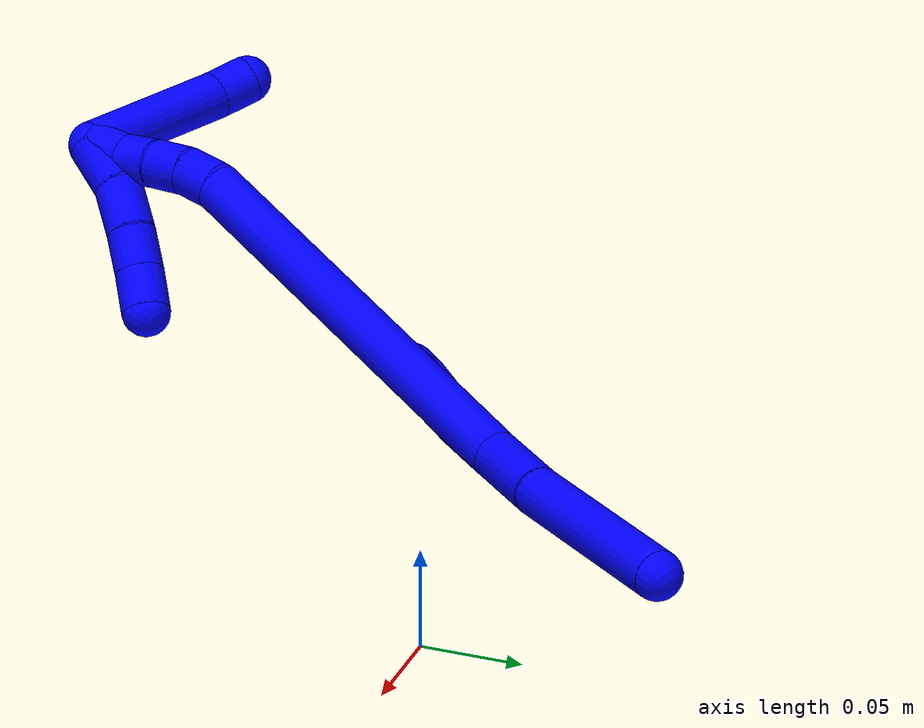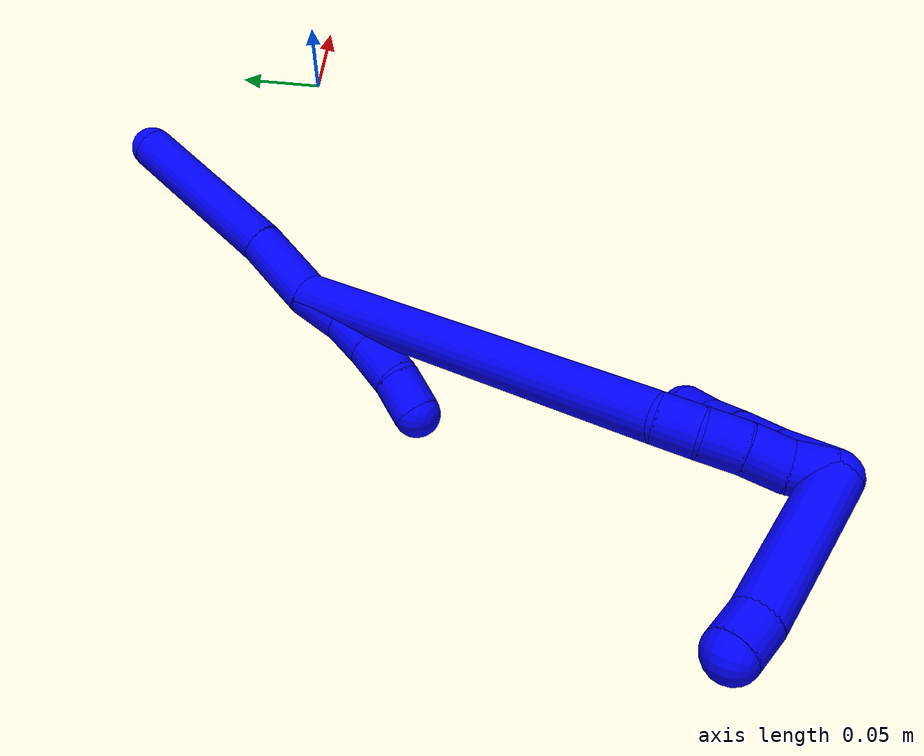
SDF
<sdf version="1.7">
 <world name="default">
  <model name="1">
   <static>0</static>
   <link name="1">
    <collision name="collision-cylinder-e_1_2_8">
     <pose>0.006537 0.007929 -0.020532 -2.77304 0.288712 -1.32473</pose>
     <geometry><cylinder><radius>0.0125</radius><length>0.04592</length></cylinder></geometry>
     <surface>
      <friction><ode><mu>1.16</mu><mu2>1.16</mu2><slip1>0</slip1><slip2>0</slip2></ode></friction>
      <contact><ode><kp>1e+06</kp><kd>1</kd><max_vel>0</max_vel><min_depth>0.001</min_depth></ode></contact>
     </surface>
    </collision>
    <visual name="visual-cylinder-e_1_2_8">
     <pose>0.006537 0.007929 -0.020532 -2.77304 0.288712 -1.32473</pose>
     <geometry><cylinder><radius>0.0125</radius><length>0.04592</length></cylinder></geometry>
     <material><ambient>0 0 1 1</ambient></material>
    </visual>
    <collision name="collision-cylinder-e_2_8_6">
     <pose>0.022446 0.033616 -0.089074 -2.78734 0.181078 -0.93876</pose>
     <geometry><cylinder><radius>0.0125</radius><length>0.10408</length></cylinder></geometry>
     <surface>
      <friction><ode><mu>1.16</mu><mu2>1.16</mu2><slip1>0</slip1><slip2>0</slip2></ode></friction>
      <contact><ode><kp>1e+06</kp><kd>1</kd><max_vel>0</max_vel><min_depth>0.001</min_depth></ode></contact>
     </surface>
    </collision>
    <visual name="visual-cylinder-e_2_8_6">
     <pose>0.022446 0.033616 -0.089074 -2.78734 0.181078 -0.93876</pose>
     <geometry><cylinder><radius>0.0125</radius><length>0.10408</length></cylinder></geometry>
     <material><ambient>0 0 1 1</ambient></material>
    </visual>
    <collision name="collision-cylinder-e_1_2_9">
     <pose>-0.002226 -0.002771 0.014634 0.187143 -0.14833 -0.013946</pose>
     <geometry><cylinder><radius>0.0125</radius><length>0.030118</length></cylinder></geometry>
     <surface>
      <friction><ode><mu>1.16</mu><mu2>1.16</mu2><slip1>0</slip1><slip2>0</slip2></ode></friction>
      <contact><ode><kp>1e+06</kp><kd>1</kd><max_vel>0</max_vel><min_depth>0.001</min_depth></ode></contact>
     </surface>
    </collision>
    <visual name="visual-cylinder-e_1_2_9">
     <pose>-0.002226 -0.002771 0.014634 0.187143 -0.14833 -0.013946</pose>
     <geometry><cylinder><radius>0.0125</radius><length>0.030118</length></cylinder></geometry>
     <material><ambient>0 0 1 1</ambient></material>
    </visual>
    <collision name="collision-cylinder-e_2_9_10">
     <pose>-0.007711 -0.008674 0.039627 0.293623 -0.292542 -0.043564</pose>
     <geometry><cylinder><radius>0.0125</radius><length>0.022606</length></cylinder></geometry>
     <surface>
      <friction><ode><mu>1.16</mu><mu2>1.16</mu2><slip1>0</slip1><slip2>0</slip2></ode></friction>
      <contact><ode><kp>1e+06</kp><kd>1</kd><max_vel>0</max_vel><min_depth>0.001</min_depth></ode></contact>
     </surface>
    </collision>
    <visual name="visual-cylinder-e_2_9_10">
     <pose>-0.007711 -0.008674 0.039627 0.293623 -0.292542 -0.043564</pose>
     <geometry><cylinder><radius>0.0125</radius><length>0.022606</length></cylinder></geometry>
     <material><ambient>0 0 1 1</ambient></material>
    </visual>
    <collision name="collision-cylinder-e_3_10_11">
     <pose>-0.015406 -0.015051 0.061317 0.278909 -0.359947 -0.051066</pose>
     <geometry><cylinder><radius>0.0125</radius><length>0.025186</length></cylinder></geometry>
     <surface>
      <friction><ode><mu>1.16</mu><mu2>1.16</mu2><slip1>0</slip1><slip2>0</slip2></ode></friction>
      <contact><ode><kp>1e+06</kp><kd>1</kd><max_vel>0</max_vel><min_depth>0.001</min_depth></ode></contact>
     </surface>
    </collision>
    <visual name="visual-cylinder-e_3_10_11">
     <pose>-0.015406 -0.015051 0.061317 0.278909 -0.359947 -0.051066</pose>
     <geometry><cylinder><radius>0.0125</radius><length>0.025186</length></cylinder></geometry>
     <material><ambient>0 0 1 1</ambient></material>
    </visual>
    <collision name="collision-cylinder-e_4_11_5">
     <pose>-0.024518 -0.023374 0.081269 0.532301 -0.437229 -0.120985</pose>
     <geometry><cylinder><radius>0.0125</radius><length>0.02209</length></cylinder></geometry>
     <surface>
      <friction><ode><mu>1.16</mu><mu2>1.16</mu2><slip1>0</slip1><slip2>0</slip2></ode></friction>
      <contact><ode><kp>1e+06</kp><kd>1</kd><max_vel>0</max_vel><min_depth>0.001</min_depth></ode></contact>
     </surface>
    </collision>
    <visual name="visual-cylinder-e_4_11_5">
     <pose>-0.024518 -0.023374 0.081269 0.532301 -0.437229 -0.120985</pose>
     <geometry><cylinder><radius>0.0125</radius><length>0.02209</length></cylinder></geometry>
     <material><ambient>0 0 1 1</ambient></material>
    </visual>
    <collision name="collision-cylinder-e_1_2_12">
     <pose>-0.000914 0.00056 0.109874 -0.0051 -0.008322 2.1e-05</pose>
     <geometry><cylinder><radius>0.0125</radius><length>0.219758</length></cylinder></geometry>
     <surface>
      <friction><ode><mu>1.16</mu><mu2>1.16</mu2><slip1>0</slip1><slip2>0</slip2></ode></friction>
      <contact><ode><kp>1e+06</kp><kd>1</kd><max_vel>0</max_vel><min_depth>0.001</min_depth></ode></contact>
     </surface>
    </collision>
    <visual name="visual-cylinder-e_1_2_12">
     <pose>-0.000914 0.00056 0.109874 -0.0051 -0.008322 2.1e-05</pose>
     <geometry><cylinder><radius>0.0125</radius><length>0.219758</length></cylinder></geometry>
     <material><ambient>0 0 1 1</ambient></material>
    </visual>
    <collision name="collision-cylinder-e_2_12_13">
     <pose>-0.000506 -0.000904 0.22956 0.203502 0.131289 0.013424</pose>
     <geometry><cylinder><radius>0.0125</radius><length>0.020214</length></cylinder></geometry>
     <surface>
      <friction><ode><mu>1.16</mu><mu2>1.16</mu2><slip1>0</slip1><slip2>0</slip2></ode></friction>
      <contact><ode><kp>1e+06</kp><kd>1</kd><max_vel>0</max_vel><min_depth>0.001</min_depth></ode></contact>
     </surface>
    </collision>
    <visual name="visual-cylinder-e_2_12_13">
     <pose>-0.000506 -0.000904 0.22956 0.203502 0.131289 0.013424</pose>
     <geometry><cylinder><radius>0.0125</radius><length>0.020214</length></cylinder></geometry>
     <material><ambient>0 0 1 1</ambient></material>
    </visual>
    <collision name="collision-cylinder-e_3_13_14">
     <pose>0.003231 -0.00643 0.248428 0.368864 0.24368 0.045677</pose>
     <geometry><cylinder><radius>0.0125</radius><length>0.020006</length></cylinder></geometry>
     <surface>
      <friction><ode><mu>1.16</mu><mu2>1.16</mu2><slip1>0</slip1><slip2>0</slip2></ode></friction>
      <contact><ode><kp>1e+06</kp><kd>1</kd><max_vel>0</max_vel><min_depth>0.001</min_depth></ode></contact>
     </surface>
    </collision>
    <visual name="visual-cylinder-e_3_13_14">
     <pose>0.003231 -0.00643 0.248428 0.368864 0.24368 0.045677</pose>
     <geometry><cylinder><radius>0.0125</radius><length>0.020006</length></cylinder></geometry>
     <material><ambient>0 0 1 1</ambient></material>
    </visual>
    <collision name="collision-cylinder-e_4_14_15">
     <pose>0.00756 -0.014248 0.266308 0.455078 0.192605 0.044728</pose>
     <geometry><cylinder><radius>0.0125</radius><length>0.020019</length></cylinder></geometry>
     <surface>
      <friction><ode><mu>1.16</mu><mu2>1.16</mu2><slip1>0</slip1><slip2>0</slip2></ode></friction>
      <contact><ode><kp>1e+06</kp><kd>1</kd><max_vel>0</max_vel><min_depth>0.001</min_depth></ode></contact>
     </surface>
    </collision>
    <visual name="visual-cylinder-e_4_14_15">
     <pose>0.00756 -0.014248 0.266308 0.455078 0.192605 0.044728</pose>
     <geometry><cylinder><radius>0.0125</radius><length>0.020019</length></cylinder></geometry>
     <material><ambient>0 0 1 1</ambient></material>
    </visual>
    <collision name="collision-cylinder-e_5_15_1">
     <pose>0.012298 -0.020308 0.284568 0.182546 0.285951 0.026351</pose>
     <geometry><cylinder><radius>0.0125</radius><length>0.020003</length></cylinder></geometry>
     <surface>
      <friction><ode><mu>1.16</mu><mu2>1.16</mu2><slip1>0</slip1><slip2>0</slip2></ode></friction>
      <contact><ode><kp>1e+06</kp><kd>1</kd><max_vel>0</max_vel><min_depth>0.001</min_depth></ode></contact>
     </surface>
    </collision>
    <visual name="visual-cylinder-e_5_15_1">
     <pose>0.012298 -0.020308 0.284568 0.182546 0.285951 0.026351</pose>
     <geometry><cylinder><radius>0.0125</radius><length>0.020003</length></cylinder></geometry>
     <material><ambient>0 0 1 1</ambient></material>
    </visual>
    <collision name="collision-cylinder-e_1_1_16">
     <pose>-0.02467 -0.020375 0.293448 -1.89132 -1.52647 1.84895</pose>
     <geometry><cylinder><radius>0.0125</radius><length>0.079656</length></cylinder></geometry>
     <surface>
      <friction><ode><mu>1.16</mu><mu2>1.16</mu2><slip1>0</slip1><slip2>0</slip2></ode></friction>
      <contact><ode><kp>1e+06</kp><kd>1</kd><max_vel>0</max_vel><min_depth>0.001</min_depth></ode></contact>
     </surface>
    </collision>
    <visual name="visual-cylinder-e_1_1_16">
     <pose>-0.02467 -0.020375 0.293448 -1.89132 -1.52647 1.84895</pose>
     <geometry><cylinder><radius>0.0125</radius><length>0.079656</length></cylinder></geometry>
     <material><ambient>0 0 1 1</ambient></material>
    </visual>
    <collision name="collision-cylinder-e_2_16_4">
     <pose>-0.074344 -0.016449 0.292058 -1.92543 -1.33256 1.69229</pose>
     <geometry><cylinder><radius>0.0125</radius><length>0.020344</length></cylinder></geometry>
     <surface>
      <friction><ode><mu>1.16</mu><mu2>1.16</mu2><slip1>0</slip1><slip2>0</slip2></ode></friction>
      <contact><ode><kp>1e+06</kp><kd>1</kd><max_vel>0</max_vel><min_depth>0.001</min_depth></ode></contact>
     </surface>
    </collision>
    <visual name="visual-cylinder-e_2_16_4">
     <pose>-0.074344 -0.016449 0.292058 -1.92543 -1.33256 1.69229</pose>
     <geometry><cylinder><radius>0.0125</radius><length>0.020344</length></cylinder></geometry>
     <material><ambient>0 0 1 1</ambient></material>
    </visual>
    <collision name="collision-cylinder-e_1_1_17">
     <pose>0.017137 -0.024438 0.280233 2.96989 0.14342 1.39103</pose>
     <geometry><cylinder><radius>0.0125</radius><length>0.028244</length></cylinder></geometry>
     <surface>
      <friction><ode><mu>1.16</mu><mu2>1.16</mu2><slip1>0</slip1><slip2>0</slip2></ode></friction>
      <contact><ode><kp>1e+06</kp><kd>1</kd><max_vel>0</max_vel><min_depth>0.001</min_depth></ode></contact>
     </surface>
    </collision>
    <visual name="visual-cylinder-e_1_1_17">
     <pose>0.017137 -0.024438 0.280233 2.96989 0.14342 1.39103</pose>
     <geometry><cylinder><radius>0.0125</radius><length>0.028244</length></cylinder></geometry>
     <material><ambient>0 0 1 1</ambient></material>
    </visual>
    <collision name="collision-cylinder-e_2_17_18">
     <pose>0.0236 -0.031268 0.25436 2.7898 0.332011 1.51182</pose>
     <geometry><cylinder><radius>0.0125</radius><length>0.02727</length></cylinder></geometry>
     <surface>
      <friction><ode><mu>1.16</mu><mu2>1.16</mu2><slip1>0</slip1><slip2>0</slip2></ode></friction>
      <contact><ode><kp>1e+06</kp><kd>1</kd><max_vel>0</max_vel><min_depth>0.001</min_depth></ode></contact>
     </surface>
    </collision>
    <visual name="visual-cylinder-e_2_17_18">
     <pose>0.0236 -0.031268 0.25436 2.7898 0.332011 1.51182</pose>
     <geometry><cylinder><radius>0.0125</radius><length>0.02727</length></cylinder></geometry>
     <material><ambient>0 0 1 1</ambient></material>
    </visual>
    <collision name="collision-cylinder-e_3_18_19">
     <pose>0.031828 -0.040237 0.232859 2.69272 0.347923 1.31214</pose>
     <geometry><cylinder><radius>0.0125</radius><length>0.022197</length></cylinder></geometry>
     <surface>
      <friction><ode><mu>1.16</mu><mu2>1.16</mu2><slip1>0</slip1><slip2>0</slip2></ode></friction>
      <contact><ode><kp>1e+06</kp><kd>1</kd><max_vel>0</max_vel><min_depth>0.001</min_depth></ode></contact>
     </surface>
    </collision>
    <visual name="visual-cylinder-e_3_18_19">
     <pose>0.031828 -0.040237 0.232859 2.69272 0.347923 1.31214</pose>
     <geometry><cylinder><radius>0.0125</radius><length>0.022197</length></cylinder></geometry>
     <material><ambient>0 0 1 1</ambient></material>
    </visual>
    <collision name="collision-cylinder-e_4_19_3">
     <pose>0.040112 -0.048791 0.214093 2.7356 0.415706 1.59512</pose>
     <geometry><cylinder><radius>0.0125</radius><length>0.022289</length></cylinder></geometry>
     <surface>
      <friction><ode><mu>1.16</mu><mu2>1.16</mu2><slip1>0</slip1><slip2>0</slip2></ode></friction>
      <contact><ode><kp>1e+06</kp><kd>1</kd><max_vel>0</max_vel><min_depth>0.001</min_depth></ode></contact>
     </surface>
    </collision>
    <visual name="visual-cylinder-e_4_19_3">
     <pose>0.040112 -0.048791 0.214093 2.7356 0.415706 1.59512</pose>
     <geometry><cylinder><radius>0.0125</radius><length>0.022289</length></cylinder></geometry>
     <material><ambient>0 0 1 1</ambient></material>
    </visual>
    <collision name="collision-sphere-3">
     <pose>0.044613 -0.052818 0.204726 0 -0 0</pose>
     <geometry><sphere><radius>0.0125</radius></sphere></geometry>
     <surface>
      <friction><ode><mu>1.16</mu><mu2>1.16</mu2><slip1>0</slip1><slip2>0</slip2></ode></friction>
      <contact><ode><kp>1e+06</kp><kd>1</kd><max_vel>0</max_vel><min_depth>0.001</min_depth></ode></contact>
     </surface>
    </collision>
    <visual name="visual-sphere-3">
     <pose>0.044613 -0.052818 0.204726 0 -0 0</pose>
     <geometry><sphere><radius>0.0125</radius></sphere></geometry>
     <material><ambient>0 0 1 1</ambient></material>
    </visual>
    <collision name="collision-sphere-19">
     <pose>0.035612 -0.044765 0.223459 0 -0 0</pose>
     <geometry><sphere><radius>0.0125</radius></sphere></geometry>
     <surface>
      <friction><ode><mu>1.16</mu><mu2>1.16</mu2><slip1>0</slip1><slip2>0</slip2></ode></friction>
      <contact><ode><kp>1e+06</kp><kd>1</kd><max_vel>0</max_vel><min_depth>0.001</min_depth></ode></contact>
     </surface>
    </collision>
    <visual name="visual-sphere-19">
     <pose>0.035612 -0.044765 0.223459 0 -0 0</pose>
     <geometry><sphere><radius>0.0125</radius></sphere></geometry>
     <material><ambient>0 0 1 1</ambient></material>
    </visual>
    <collision name="collision-sphere-11">
     <pose>-0.019842 -0.018296 0.072648 0 -0 0</pose>
     <geometry><sphere><radius>0.0125</radius></sphere></geometry>
     <surface>
      <friction><ode><mu>1.16</mu><mu2>1.16</mu2><slip1>0</slip1><slip2>0</slip2></ode></friction>
      <contact><ode><kp>1e+06</kp><kd>1</kd><max_vel>0</max_vel><min_depth>0.001</min_depth></ode></contact>
     </surface>
    </collision>
    <visual name="visual-sphere-11">
     <pose>-0.019842 -0.018296 0.072648 0 -0 0</pose>
     <geometry><sphere><radius>0.0125</radius></sphere></geometry>
     <material><ambient>0 0 1 1</ambient></material>
    </visual>
    <collision name="collision-sphere-10">
     <pose>-0.01097 -0.011807 0.049986 0 -0 0</pose>
     <geometry><sphere><radius>0.0125</radius></sphere></geometry>
     <surface>
      <friction><ode><mu>1.16</mu><mu2>1.16</mu2><slip1>0</slip1><slip2>0</slip2></ode></friction>
      <contact><ode><kp>1e+06</kp><kd>1</kd><max_vel>0</max_vel><min_depth>0.001</min_depth></ode></contact>
     </surface>
    </collision>
    <visual name="visual-sphere-10">
     <pose>-0.01097 -0.011807 0.049986 0 -0 0</pose>
     <geometry><sphere><radius>0.0125</radius></sphere></geometry>
     <material><ambient>0 0 1 1</ambient></material>
    </visual>
    <collision name="collision-sphere-6">
     <pose>0.031818 0.051373 -0.137085 0 -0 0</pose>
     <geometry><sphere><radius>0.0125</radius></sphere></geometry>
     <surface>
      <friction><ode><mu>1.16</mu><mu2>1.16</mu2><slip1>0</slip1><slip2>0</slip2></ode></friction>
      <contact><ode><kp>1e+06</kp><kd>1</kd><max_vel>0</max_vel><min_depth>0.001</min_depth></ode></contact>
     </surface>
    </collision>
    <visual name="visual-sphere-6">
     <pose>0.031818 0.051373 -0.137085 0 -0 0</pose>
     <geometry><sphere><radius>0.0125</radius></sphere></geometry>
     <material><ambient>0 0 1 1</ambient></material>
    </visual>
    <collision name="collision-sphere-9">
     <pose>-0.004451 -0.005542 0.029267 0 -0 0</pose>
     <geometry><sphere><radius>0.0125</radius></sphere></geometry>
     <surface>
      <friction><ode><mu>1.16</mu><mu2>1.16</mu2><slip1>0</slip1><slip2>0</slip2></ode></friction>
      <contact><ode><kp>1e+06</kp><kd>1</kd><max_vel>0</max_vel><min_depth>0.001</min_depth></ode></contact>
     </surface>
    </collision>
    <visual name="visual-sphere-9">
     <pose>-0.004451 -0.005542 0.029267 0 -0 0</pose>
     <geometry><sphere><radius>0.0125</radius></sphere></geometry>
     <material><ambient>0 0 1 1</ambient></material>
    </visual>
    <collision name="collision-sphere-2">
     <geometry><sphere><radius>0.0125</radius></sphere></geometry>
     <surface>
      <friction><ode><mu>1.16</mu><mu2>1.16</mu2><slip1>0</slip1><slip2>0</slip2></ode></friction>
      <contact><ode><kp>1e+06</kp><kd>1</kd><max_vel>0</max_vel><min_depth>0.001</min_depth></ode></contact>
     </surface>
    </collision>
    <visual name="visual-sphere-2">
     <geometry><sphere><radius>0.0125</radius></sphere></geometry>
     <material><ambient>0 0 1 1</ambient></material>
    </visual>
    <collision name="collision-sphere-8">
     <pose>0.013074 0.015859 -0.041063 0 -0 0</pose>
     <geometry><sphere><radius>0.0125</radius></sphere></geometry>
     <surface>
      <friction><ode><mu>1.16</mu><mu2>1.16</mu2><slip1>0</slip1><slip2>0</slip2></ode></friction>
      <contact><ode><kp>1e+06</kp><kd>1</kd><max_vel>0</max_vel><min_depth>0.001</min_depth></ode></contact>
     </surface>
    </collision>
    <visual name="visual-sphere-8">
     <pose>0.013074 0.015859 -0.041063 0 -0 0</pose>
     <geometry><sphere><radius>0.0125</radius></sphere></geometry>
     <material><ambient>0 0 1 1</ambient></material>
    </visual>
    <collision name="collision-sphere-5">
     <pose>-0.029195 -0.028453 0.089891 0 -0 0</pose>
     <geometry><sphere><radius>0.0125</radius></sphere></geometry>
     <surface>
      <friction><ode><mu>1.16</mu><mu2>1.16</mu2><slip1>0</slip1><slip2>0</slip2></ode></friction>
      <contact><ode><kp>1e+06</kp><kd>1</kd><max_vel>0</max_vel><min_depth>0.001</min_depth></ode></contact>
     </surface>
    </collision>
    <visual name="visual-sphere-5">
     <pose>-0.029195 -0.028453 0.089891 0 -0 0</pose>
     <geometry><sphere><radius>0.0125</radius></sphere></geometry>
     <material><ambient>0 0 1 1</ambient></material>
    </visual>
    <collision name="collision-sphere-12">
     <pose>-0.001829 0.001121 0.219747 0 -0 0</pose>
     <geometry><sphere><radius>0.0125</radius></sphere></geometry>
     <surface>
      <friction><ode><mu>1.16</mu><mu2>1.16</mu2><slip1>0</slip1><slip2>0</slip2></ode></friction>
      <contact><ode><kp>1e+06</kp><kd>1</kd><max_vel>0</max_vel><min_depth>0.001</min_depth></ode></contact>
     </surface>
    </collision>
    <visual name="visual-sphere-12">
     <pose>-0.001829 0.001121 0.219747 0 -0 0</pose>
     <geometry><sphere><radius>0.0125</radius></sphere></geometry>
     <material><ambient>0 0 1 1</ambient></material>
    </visual>
    <collision name="collision-sphere-13">
     <pose>0.000817 -0.002929 0.239374 0 -0 0</pose>
     <geometry><sphere><radius>0.0125</radius></sphere></geometry>
     <surface>
      <friction><ode><mu>1.16</mu><mu2>1.16</mu2><slip1>0</slip1><slip2>0</slip2></ode></friction>
      <contact><ode><kp>1e+06</kp><kd>1</kd><max_vel>0</max_vel><min_depth>0.001</min_depth></ode></contact>
     </surface>
    </collision>
    <visual name="visual-sphere-13">
     <pose>0.000817 -0.002929 0.239374 0 -0 0</pose>
     <geometry><sphere><radius>0.0125</radius></sphere></geometry>
     <material><ambient>0 0 1 1</ambient></material>
    </visual>
    <collision name="collision-sphere-14">
     <pose>0.005644 -0.00993 0.257483 0 -0 0</pose>
     <geometry><sphere><radius>0.0125</radius></sphere></geometry>
     <surface>
      <friction><ode><mu>1.16</mu><mu2>1.16</mu2><slip1>0</slip1><slip2>0</slip2></ode></friction>
      <contact><ode><kp>1e+06</kp><kd>1</kd><max_vel>0</max_vel><min_depth>0.001</min_depth></ode></contact>
     </surface>
    </collision>
    <visual name="visual-sphere-14">
     <pose>0.005644 -0.00993 0.257483 0 -0 0</pose>
     <geometry><sphere><radius>0.0125</radius></sphere></geometry>
     <material><ambient>0 0 1 1</ambient></material>
    </visual>
    <collision name="collision-sphere-15">
     <pose>0.009476 -0.018566 0.275132 0 -0 0</pose>
     <geometry><sphere><radius>0.0125</radius></sphere></geometry>
     <surface>
      <friction><ode><mu>1.16</mu><mu2>1.16</mu2><slip1>0</slip1><slip2>0</slip2></ode></friction>
      <contact><ode><kp>1e+06</kp><kd>1</kd><max_vel>0</max_vel><min_depth>0.001</min_depth></ode></contact>
     </surface>
    </collision>
    <visual name="visual-sphere-15">
     <pose>0.009476 -0.018566 0.275132 0 -0 0</pose>
     <geometry><sphere><radius>0.0125</radius></sphere></geometry>
     <material><ambient>0 0 1 1</ambient></material>
    </visual>
    <collision name="collision-sphere-1">
     <pose>0.015119 -0.02205 0.294004 0 -0 0</pose>
     <geometry><sphere><radius>0.0125</radius></sphere></geometry>
     <surface>
      <friction><ode><mu>1.16</mu><mu2>1.16</mu2><slip1>0</slip1><slip2>0</slip2></ode></friction>
      <contact><ode><kp>1e+06</kp><kd>1</kd><max_vel>0</max_vel><min_depth>0.001</min_depth></ode></contact>
     </surface>
    </collision>
    <visual name="visual-sphere-1">
     <pose>0.015119 -0.02205 0.294004 0 -0 0</pose>
     <geometry><sphere><radius>0.0125</radius></sphere></geometry>
     <material><ambient>0 0 1 1</ambient></material>
    </visual>
    <collision name="collision-sphere-18">
     <pose>0.028044 -0.03571 0.242259 0 -0 0</pose>
     <geometry><sphere><radius>0.0125</radius></sphere></geometry>
     <surface>
      <friction><ode><mu>1.16</mu><mu2>1.16</mu2><slip1>0</slip1><slip2>0</slip2></ode></friction>
      <contact><ode><kp>1e+06</kp><kd>1</kd><max_vel>0</max_vel><min_depth>0.001</min_depth></ode></contact>
     </surface>
    </collision>
    <visual name="visual-sphere-18">
     <pose>0.028044 -0.03571 0.242259 0 -0 0</pose>
     <geometry><sphere><radius>0.0125</radius></sphere></geometry>
     <material><ambient>0 0 1 1</ambient></material>
    </visual>
    <collision name="collision-sphere-16">
     <pose>-0.064459 -0.0187 0.292892 0 -0 0</pose>
     <geometry><sphere><radius>0.0125</radius></sphere></geometry>
     <surface>
      <friction><ode><mu>1.16</mu><mu2>1.16</mu2><slip1>0</slip1><slip2>0</slip2></ode></friction>
      <contact><ode><kp>1e+06</kp><kd>1</kd><max_vel>0</max_vel><min_depth>0.001</min_depth></ode></contact>
     </surface>
    </collision>
    <visual name="visual-sphere-16">
     <pose>-0.064459 -0.0187 0.292892 0 -0 0</pose>
     <geometry><sphere><radius>0.0125</radius></sphere></geometry>
     <material><ambient>0 0 1 1</ambient></material>
    </visual>
    <collision name="collision-sphere-4">
     <pose>-0.084229 -0.014197 0.291225 0 -0 0</pose>
     <geometry><sphere><radius>0.0125</radius></sphere></geometry>
     <surface>
      <friction><ode><mu>1.16</mu><mu2>1.16</mu2><slip1>0</slip1><slip2>0</slip2></ode></friction>
      <contact><ode><kp>1e+06</kp><kd>1</kd><max_vel>0</max_vel><min_depth>0.001</min_depth></ode></contact>
     </surface>
    </collision>
    <visual name="visual-sphere-4">
     <pose>-0.084229 -0.014197 0.291225 0 -0 0</pose>
     <geometry><sphere><radius>0.0125</radius></sphere></geometry>
     <material><ambient>0 0 1 1</ambient></material>
    </visual>
    <collision name="collision-sphere-17">
     <pose>0.019156 -0.026826 0.266461 0 -0 0</pose>
     <geometry><sphere><radius>0.0125</radius></sphere></geometry>
     <surface>
      <friction><ode><mu>1.16</mu><mu2>1.16</mu2><slip1>0</slip1><slip2>0</slip2></ode></friction>
      <contact><ode><kp>1e+06</kp><kd>1</kd><max_vel>0</max_vel><min_depth>0.001</min_depth></ode></contact>
     </surface>
    </collision>
    <visual name="visual-sphere-17">
     <pose>0.019156 -0.026826 0.266461 0 -0 0</pose>
     <geometry><sphere><radius>0.0125</radius></sphere></geometry>
     <material><ambient>0 0 1 1</ambient></material>
    </visual>
    <inertial>
     <pose>0.001289 -0.004678 0.124467 0 -0 0</pose>
     <mass>0.75</mass>
     <inertia><ixx>0.000887</ixx><ixy>0</ixy><ixz>0</ixz><iyy>0.000825</iyy><iyz>0</iyz><izz>8e-06</izz></inertia>
    </inertial>
   </link>
   <pose>-0.174217 -0.027029 0.011496 1.24239 0.026816 -0.476329</pose>
  </model>
 </world>
</sdf>
